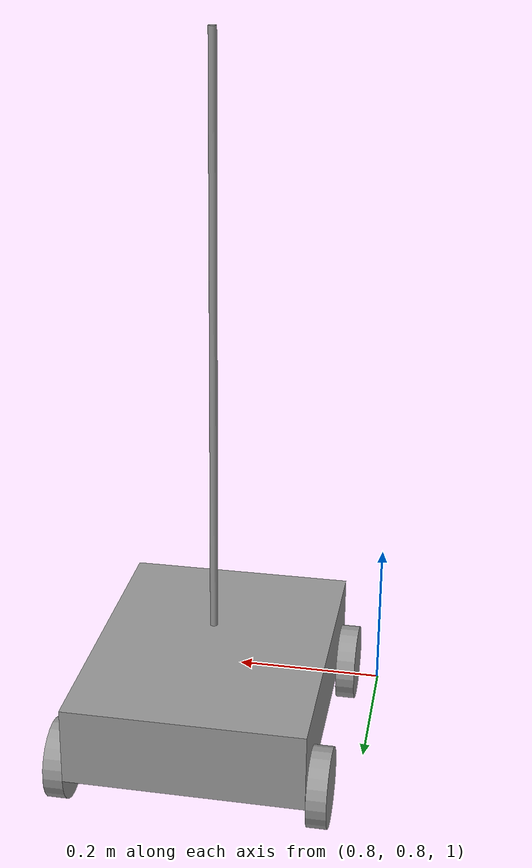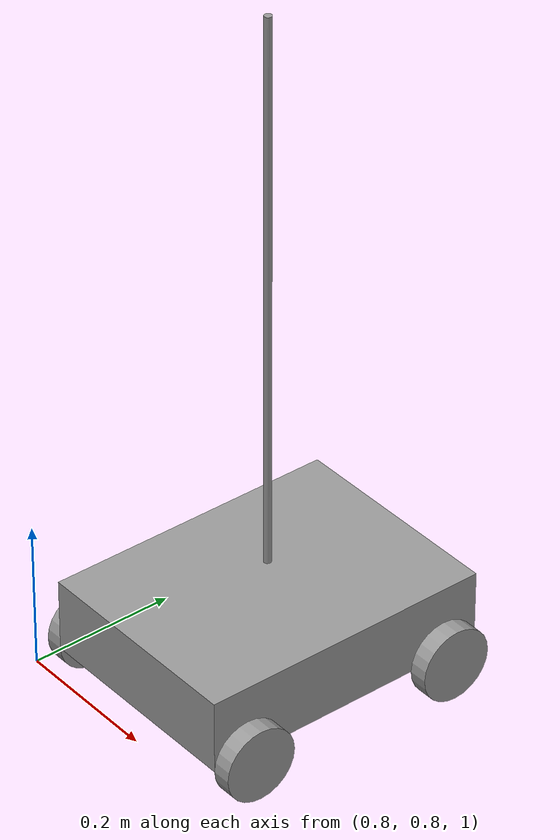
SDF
<sdf version="1.6">
 <world name="crazyflie_pendulum_world">
  <physics name="1ms" type="ignored">
   <max_step_size>0.001</max_step_size>
   <real_time_factor>1.0</real_time_factor>
  </physics>
  <plugin filename="gz-sim-physics-system" name="gz::sim::systems::Physics"/>
  <plugin filename="gz-sim-user-commands-system" name="gz::sim::systems::UserCommands"/>
  <plugin filename="gz-sim-scene-broadcaster-system" name="gz::sim::systems::SceneBroadcaster"/>
  <plugin filename="gz-sim-sensors-system" name="gz::sim::systems::Sensors">
   <render_engine>ogre2</render_engine>
  </plugin>
  <light type="directional" name="sun">
   <pose>0 0 10 0 0 0</pose>
   <diffuse>0.8 0.8 0.8 1</diffuse>
   <specular>0.2 0.2 0.2 1</specular>
   <attenuation>
    <range>1000</range>
    <constant>0.9</constant>
    <linear>0.01</linear>
    <quadratic>0.001</quadratic>
   </attenuation>
   <direction>-0.5 0.1 -0.9</direction>
  </light>
  <model name="ground_plane">
   <static>true</static>
   <link name="link">
    <collision name="collision">
     <geometry><plane><normal>0 0 1</normal><size>100 100</size></plane></geometry>
    </collision>
    <visual name="visual">
     <geometry><plane><normal>0 0 1</normal><size>100 100</size></plane></geometry>
     <material>
      <ambient>0.8 0.8 0.8 1</ambient>
      <diffuse>0.8 0.8 0.8 1</diffuse>
      <specular>0.8 0.8 0.8 1</specular>
     </material>
    </visual>
   </link>
  </model>
  <include><uri>model://inverted_pendulum</uri><name>pendulum_cart</name><pose>1 1 1 0 0 0</pose></include>
 </world>
</sdf>

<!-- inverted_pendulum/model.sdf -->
<sdf version='1.6'>
  <model name='pendulum_cart'>
    <link name='link_0'>
      <pose frame=''>-0 -0 0.1 0 -0 0</pose>
      <inertial>
        <mass>1</mass>
        <inertia>
          <ixx>0.01417</ixx>
          <ixy>0</ixy>
          <ixz>0</ixz>
          <iyy>0.00833333</iyy>
          <iyz>0</iyz>
          <izz>0.0208333</izz>
        </inertia>
        <pose frame=''>0 0 0 0 -0 0</pose>
      </inertial>
      <self_collide>0</self_collide>
      <kinematic>0</kinematic>
      <visual name='visual'>
        <pose frame=''>0 0 0 0 -0 0</pose>
        <geometry>
          <box>
            <size>0.3 0.4 0.1</size>
          </box>
        </geometry>
        <material>
          <lighting>1</lighting>
          <script>
            <uri>file://media/materials/scripts/gazebo.material</uri>
            <name>Gazebo/Grey</name>
          </script>
          <ambient>0.3 0.3 0.3 1</ambient>
          <diffuse>0.7 0.7 0.7 1</diffuse>
          <specular>0.01 0.01 0.01 1</specular>
          <emissive>0 0 0 1</emissive>
          <shader type='vertex'>
            <normal_map>__default__</normal_map>
          </shader>
        </material>
        <cast_shadows>1</cast_shadows>
        <transparency>0</transparency>
      </visual>
      <collision name='collision'>
        <laser_retro>0</laser_retro>
        <max_contacts>10</max_contacts>
        <pose frame=''>0 0 0 0 -0 0</pose>
        <geometry>
          <box>
            <size>0.3 0.4 0.1</size>
          </box>
        </geometry>
        <surface>
          <friction>
            <ode>
              <mu>1</mu>
              <mu2>1</mu2>
              <fdir1>0 0 0</fdir1>
              <slip1>0</slip1>
              <slip2>0</slip2>
            </ode>
            <torsional>
              <coefficient>1</coefficient>
              <patch_radius>0</patch_radius>
              <surface_radius>0</surface_radius>
              <use_patch_radius>1</use_patch_radius>
              <ode>
                <slip>0</slip>
              </ode>
            </torsional>
          </friction>
          <bounce>
            <restitution_coefficient>0</restitution_coefficient>
            <threshold>1e+06</threshold>
          </bounce>
          <contact>
            <collide_without_contact>0</collide_without_contact>
            <collide_without_contact_bitmask>1</collide_without_contact_bitmask>
            <collide_bitmask>1</collide_bitmask>
            <ode>
              <soft_cfm>0</soft_cfm>
              <soft_erp>0.2</soft_erp>
              <kp>1e+13</kp>
              <kd>1</kd>
              <max_vel>0.01</max_vel>
              <min_depth>0</min_depth>
            </ode>
            <bullet>
              <split_impulse>1</split_impulse>
              <split_impulse_penetration_threshold>-0.01</split_impulse_penetration_threshold>
              <soft_cfm>0</soft_cfm>
              <soft_erp>0.2</soft_erp>
              <kp>1e+13</kp>
              <kd>1</kd>
            </bullet>
          </contact>
        </surface>
      </collision>
    </link>
    <link name='link_0_0'>
      <pose frame=''>0 0 0.55 0 -0 0</pose>
      <inertial>
        <mass>0.1</mass>
        <inertia>
          <ixx>0.004688</ixx>
          <ixy>0</ixy>
          <ixz>0</ixz>
          <iyy>0.004688</iyy>
          <iyz>0</iyz>
          <izz>1.25e-06</izz>
        </inertia>
        <pose frame=''>0 0 0 0 -0 0</pose>
      </inertial>
      <gravity>1</gravity>
      <self_collide>0</self_collide>
      <kinematic>0</kinematic>
      <visual name='visual'>
        <pose frame=''>0 0 0 0 -0 0</pose>
        <geometry>
          <cylinder>
            <radius>0.005</radius>
            <length>0.75</length>
          </cylinder>
        </geometry>
        <material>
          <lighting>1</lighting>
          <script>
            <uri>file://media/materials/scripts/gazebo.material</uri>
            <name>Gazebo/Grey</name>
          </script>
          <ambient>0.3 0.3 0.3 1</ambient>
          <diffuse>0.7 0.7 0.7 1</diffuse>
          <specular>0.01 0.01 0.01 1</specular>
          <emissive>0 0 0 1</emissive>
          <shader type='vertex'>
            <normal_map>__default__</normal_map>
          </shader>
        </material>
        <cast_shadows>1</cast_shadows>
        <transparency>0</transparency>
      </visual>
      <collision name='collision'>
        <laser_retro>0</laser_retro>
        <max_contacts>10</max_contacts>
        <pose frame=''>0 0 0 0 -0 0</pose>
        <geometry>
          <cylinder>
            <radius>0.005</radius>
            <length>0.75</length>
          </cylinder>
        </geometry>
        <surface>
          <friction>
            <ode>
              <mu>1</mu>
              <mu2>1</mu2>
              <fdir1>0 0 0</fdir1>
              <slip1>0</slip1>
              <slip2>0</slip2>
            </ode>
            <torsional>
              <coefficient>1</coefficient>
              <patch_radius>0</patch_radius>
              <surface_radius>0</surface_radius>
              <use_patch_radius>1</use_patch_radius>
              <ode>
                <slip>0</slip>
              </ode>
            </torsional>
          </friction>
          <bounce>
            <restitution_coefficient>0</restitution_coefficient>
            <threshold>1e+06</threshold>
          </bounce>
          <contact>
            <collide_without_contact>0</collide_without_contact>
            <collide_without_contact_bitmask>1</collide_without_contact_bitmask>
            <collide_bitmask>1</collide_bitmask>
            <ode>
              <soft_cfm>0</soft_cfm>
              <soft_erp>0.2</soft_erp>
              <kp>1e+13</kp>
              <kd>1</kd>
              <max_vel>0.01</max_vel>
              <min_depth>0</min_depth>
            </ode>
            <bullet>
              <split_impulse>1</split_impulse>
              <split_impulse_penetration_threshold>-0.01</split_impulse_penetration_threshold>
              <soft_cfm>0</soft_cfm>
              <soft_erp>0.2</soft_erp>
              <kp>1e+13</kp>
              <kd>1</kd>
            </bullet>
          </contact>
        </surface>
      </collision>
    </link>
    <link name='link_1'>
      <pose frame=''>0.1625 -0.15 0.05 -3.14159 1.57079 -3.14159</pose>
      <inertial>
        <mass>0.25</mass>
        <inertia>
          <ixx>0.0001693</ixx>
          <ixy>0</ixy>
          <ixz>0</ixz>
          <iyy>0.0001693</iyy>
          <iyz>0</iyz>
          <izz>0.0003125</izz>
        </inertia>
        <pose frame=''>0 0 0 0 -0 0</pose>
      </inertial>
      <self_collide>0</self_collide>
      <kinematic>0</kinematic>
      <visual name='visual'>
        <pose frame=''>0 0 0 0 -0 0</pose>
        <geometry>
          <cylinder>
            <radius>0.05</radius>
            <length>0.025</length>
          </cylinder>
        </geometry>
        <material>
          <lighting>1</lighting>
          <script>
            <uri>file://media/materials/scripts/gazebo.material</uri>
            <name>Gazebo/Grey</name>
          </script>
          <ambient>0.3 0.3 0.3 1</ambient>
          <diffuse>0.7 0.7 0.7 1</diffuse>
          <specular>0.01 0.01 0.01 1</specular>
          <emissive>0 0 0 1</emissive>
          <shader type='vertex'>
            <normal_map>__default__</normal_map>
          </shader>
        </material>
        <cast_shadows>1</cast_shadows>
        <transparency>0</transparency>
      </visual>
      <collision name='collision'>
        <laser_retro>0</laser_retro>
        <max_contacts>10</max_contacts>
        <pose frame=''>0 0 0 0 -0 0</pose>
        <geometry>
          <cylinder>
            <radius>0.05</radius>
            <length>0.025</length>
          </cylinder>
        </geometry>
        <surface>
          <friction>
            <ode>
              <mu>1</mu>
              <mu2>1</mu2>
              <fdir1>0 0 0</fdir1>
              <slip1>0</slip1>
              <slip2>0</slip2>
            </ode>
            <torsional>
              <coefficient>1</coefficient>
              <patch_radius>0</patch_radius>
              <surface_radius>0</surface_radius>
              <use_patch_radius>1</use_patch_radius>
              <ode>
                <slip>0</slip>
              </ode>
            </torsional>
          </friction>
          <bounce>
            <restitution_coefficient>0</restitution_coefficient>
            <threshold>1e+06</threshold>
          </bounce>
          <contact>
            <collide_without_contact>0</collide_without_contact>
            <collide_without_contact_bitmask>1</collide_without_contact_bitmask>
            <collide_bitmask>1</collide_bitmask>
            <ode>
              <soft_cfm>0</soft_cfm>
              <soft_erp>0.2</soft_erp>
              <kp>1e+13</kp>
              <kd>1</kd>
              <max_vel>0.01</max_vel>
              <min_depth>0</min_depth>
            </ode>
            <bullet>
              <split_impulse>1</split_impulse>
              <split_impulse_penetration_threshold>-0.01</split_impulse_penetration_threshold>
              <soft_cfm>0</soft_cfm>
              <soft_erp>0.2</soft_erp>
              <kp>1e+13</kp>
              <kd>1</kd>
            </bullet>
          </contact>
        </surface>
      </collision>
    </link>
    <link name='link_1_clone'>
      <pose frame=''>0.1625 0.15 0.05 -3.14159 1.57079 -3.14159</pose>
      <inertial>
        <mass>0.25</mass>
        <inertia>
          <ixx>0.0001693</ixx>
          <ixy>0</ixy>
          <ixz>0</ixz>
          <iyy>0.0001693</iyy>
          <iyz>0</iyz>
          <izz>0.0003125</izz>
        </inertia>
        <pose frame=''>0 0 0 0 -0 0</pose>
      </inertial>
      <self_collide>0</self_collide>
      <kinematic>0</kinematic>
      <visual name='visual'>
        <pose frame=''>0 0 0 0 -0 0</pose>
        <geometry>
          <cylinder>
            <radius>0.05</radius>
            <length>0.025</length>
          </cylinder>
        </geometry>
        <material>
          <lighting>1</lighting>
          <script>
            <uri>file://media/materials/scripts/gazebo.material</uri>
            <name>Gazebo/Grey</name>
          </script>
          <ambient>0.3 0.3 0.3 1</ambient>
          <diffuse>0.7 0.7 0.7 1</diffuse>
          <specular>0.01 0.01 0.01 1</specular>
          <emissive>0 0 0 1</emissive>
          <shader type='vertex'>
            <normal_map>__default__</normal_map>
          </shader>
        </material>
        <cast_shadows>1</cast_shadows>
        <transparency>0</transparency>
      </visual>
      <collision name='collision'>
        <laser_retro>0</laser_retro>
        <max_contacts>10</max_contacts>
        <pose frame=''>0 0 0 0 -0 0</pose>
        <geometry>
          <cylinder>
            <radius>0.05</radius>
            <length>0.025</length>
          </cylinder>
        </geometry>
        <surface>
          <friction>
            <ode>
              <mu>1</mu>
              <mu2>1</mu2>
              <fdir1>0 0 0</fdir1>
              <slip1>0</slip1>
              <slip2>0</slip2>
            </ode>
            <torsional>
              <coefficient>1</coefficient>
              <patch_radius>0</patch_radius>
              <surface_radius>0</surface_radius>
              <use_patch_radius>1</use_patch_radius>
              <ode>
                <slip>0</slip>
              </ode>
            </torsional>
          </friction>
          <bounce>
            <restitution_coefficient>0</restitution_coefficient>
            <threshold>1e+06</threshold>
          </bounce>
          <contact>
            <collide_without_contact>0</collide_without_contact>
            <collide_without_contact_bitmask>1</collide_without_contact_bitmask>
            <collide_bitmask>1</collide_bitmask>
            <ode>
              <soft_cfm>0</soft_cfm>
              <soft_erp>0.2</soft_erp>
              <kp>1e+13</kp>
              <kd>1</kd>
              <max_vel>0.01</max_vel>
              <min_depth>0</min_depth>
            </ode>
            <bullet>
              <split_impulse>1</split_impulse>
              <split_impulse_penetration_threshold>-0.01</split_impulse_penetration_threshold>
              <soft_cfm>0</soft_cfm>
              <soft_erp>0.2</soft_erp>
              <kp>1e+13</kp>
              <kd>1</kd>
            </bullet>
          </contact>
        </surface>
      </collision>
    </link>
    <link name='link_1_clone_0'>
      <pose frame=''>-0.1625 0.15 0.05 -3.14159 1.57079 -3.14159</pose>
      <inertial>
        <mass>0.25</mass>
        <inertia>
          <ixx>0.0001693</ixx>
          <ixy>0</ixy>
          <ixz>0</ixz>
          <iyy>0.0001693</iyy>
          <iyz>0</iyz>
          <izz>0.0003125</izz>
        </inertia>
        <pose frame=''>0 0 0 0 -0 0</pose>
      </inertial>
      <self_collide>0</self_collide>
      <kinematic>0</kinematic>
      <visual name='visual'>
        <pose frame=''>0 0 0 0 -0 0</pose>
        <geometry>
          <cylinder>
            <radius>0.05</radius>
            <length>0.025</length>
          </cylinder>
        </geometry>
        <material>
          <lighting>1</lighting>
          <script>
            <uri>file://media/materials/scripts/gazebo.material</uri>
            <name>Gazebo/Grey</name>
          </script>
          <ambient>0.3 0.3 0.3 1</ambient>
          <diffuse>0.7 0.7 0.7 1</diffuse>
          <specular>0.01 0.01 0.01 1</specular>
          <emissive>0 0 0 1</emissive>
          <shader type='vertex'>
            <normal_map>__default__</normal_map>
          </shader>
        </material>
        <cast_shadows>1</cast_shadows>
        <transparency>0</transparency>
      </visual>
      <collision name='collision'>
        <laser_retro>0</laser_retro>
        <max_contacts>10</max_contacts>
        <pose frame=''>0 0 0 0 -0 0</pose>
        <geometry>
          <cylinder>
            <radius>0.05</radius>
            <length>0.025</length>
          </cylinder>
        </geometry>
        <surface>
          <friction>
            <ode>
              <mu>1</mu>
              <mu2>1</mu2>
              <fdir1>0 0 0</fdir1>
              <slip1>0</slip1>
              <slip2>0</slip2>
            </ode>
            <torsional>
              <coefficient>1</coefficient>
              <patch_radius>0</patch_radius>
              <surface_radius>0</surface_radius>
              <use_patch_radius>1</use_patch_radius>
              <ode>
                <slip>0</slip>
              </ode>
            </torsional>
          </friction>
          <bounce>
            <restitution_coefficient>0</restitution_coefficient>
            <threshold>1e+06</threshold>
          </bounce>
          <contact>
            <collide_without_contact>0</collide_without_contact>
            <collide_without_contact_bitmask>1</collide_without_contact_bitmask>
            <collide_bitmask>1</collide_bitmask>
            <ode>
              <soft_cfm>0</soft_cfm>
              <soft_erp>0.2</soft_erp>
              <kp>1e+13</kp>
              <kd>1</kd>
              <max_vel>0.01</max_vel>
              <min_depth>0</min_depth>
            </ode>
            <bullet>
              <split_impulse>1</split_impulse>
              <split_impulse_penetration_threshold>-0.01</split_impulse_penetration_threshold>
              <soft_cfm>0</soft_cfm>
              <soft_erp>0.2</soft_erp>
              <kp>1e+13</kp>
              <kd>1</kd>
            </bullet>
          </contact>
        </surface>
      </collision>
    </link>
    <link name='link_1_clone_1'>
      <pose frame=''>-0.1625 -0.15 0.05 -3.14159 1.57079 -3.14159</pose>
      <inertial>
        <mass>0.25</mass>
        <inertia>
          <ixx>0.0001693</ixx>
          <ixy>0</ixy>
          <ixz>0</ixz>
          <iyy>0.0001693</iyy>
          <iyz>0</iyz>
          <izz>0.0003125</izz>
        </inertia>
        <pose frame=''>0 0 0 0 -0 0</pose>
      </inertial>
      <self_collide>0</self_collide>
      <kinematic>0</kinematic>
      <visual name='visual'>
        <pose frame=''>0 0 0 0 -0 0</pose>
        <geometry>
          <cylinder>
            <radius>0.05</radius>
            <length>0.025</length>
          </cylinder>
        </geometry>
        <material>
          <lighting>1</lighting>
          <script>
            <uri>file://media/materials/scripts/gazebo.material</uri>
            <name>Gazebo/Grey</name>
          </script>
          <ambient>0.3 0.3 0.3 1</ambient>
          <diffuse>0.7 0.7 0.7 1</diffuse>
          <specular>0.01 0.01 0.01 1</specular>
          <emissive>0 0 0 1</emissive>
          <shader type='vertex'>
            <normal_map>__default__</normal_map>
          </shader>
        </material>
        <cast_shadows>1</cast_shadows>
        <transparency>0</transparency>
      </visual>
      <collision name='collision'>
        <laser_retro>0</laser_retro>
        <max_contacts>10</max_contacts>
        <pose frame=''>0 0 0 0 -0 0</pose>
        <geometry>
          <cylinder>
            <radius>0.05</radius>
            <length>0.025</length>
          </cylinder>
        </geometry>
        <surface>
          <friction>
            <ode>
              <mu>1</mu>
              <mu2>1</mu2>
              <fdir1>0 0 0</fdir1>
              <slip1>0</slip1>
              <slip2>0</slip2>
            </ode>
            <torsional>
              <coefficient>1</coefficient>
              <patch_radius>0</patch_radius>
              <surface_radius>0</surface_radius>
              <use_patch_radius>1</use_patch_radius>
              <ode>
                <slip>0</slip>
              </ode>
            </torsional>
          </friction>
          <bounce>
            <restitution_coefficient>0</restitution_coefficient>
            <threshold>1e+06</threshold>
          </bounce>
          <contact>
            <collide_without_contact>0</collide_without_contact>
            <collide_without_contact_bitmask>1</collide_without_contact_bitmask>
            <collide_bitmask>1</collide_bitmask>
            <ode>
              <soft_cfm>0</soft_cfm>
              <soft_erp>0.2</soft_erp>
              <kp>1e+13</kp>
              <kd>1</kd>
              <max_vel>0.01</max_vel>
              <min_depth>0</min_depth>
            </ode>
            <bullet>
              <split_impulse>1</split_impulse>
              <split_impulse_penetration_threshold>-0.01</split_impulse_penetration_threshold>
              <soft_cfm>0</soft_cfm>
              <soft_erp>0.2</soft_erp>
              <kp>1e+13</kp>
              <kd>1</kd>
            </bullet>
          </contact>
        </surface>
      </collision>
    </link>
    <joint name='pendulum_pivot' type='revolute'>
      <parent>link_0</parent>
      <child>link_0_0</child>
      <pose frame=''>0 0 -0.375 0 -0 0</pose>
      <axis>
        <xyz>1 0 0</xyz>
        <use_parent_model_frame>0</use_parent_model_frame>
        <limit>
          <lower>-1.79769e+308</lower>
          <upper>1.79769e+308</upper>
          <effort>-1</effort>
          <velocity>-1</velocity>
        </limit>
        <dynamics>
          <spring_reference>0</spring_reference>
          <spring_stiffness>0</spring_stiffness>
          <damping>0</damping>
          <friction>0</friction>
        </dynamics>
      </axis>
      <physics>
        <ode>
          <limit>
            <cfm>0</cfm>
            <erp>0.2</erp>
          </limit>
          <suspension>
            <cfm>0</cfm>
            <erp>0.2</erp>
          </suspension>
        </ode>
      </physics>
    </joint>
    <joint name='br_wheel' type='revolute'>
      <parent>link_0</parent>
      <child>link_1</child>
      <pose frame=''>0 0 0 0 -0 0</pose>
      <axis>
        <xyz>0 0 1</xyz>
        <use_parent_model_frame>0</use_parent_model_frame>
        <limit>
          <lower>-1.79769e+308</lower>
          <upper>1.79769e+308</upper>
          <effort>-1</effort>
          <velocity>-1</velocity>
        </limit>
        <dynamics>
          <spring_reference>0</spring_reference>
          <spring_stiffness>0</spring_stiffness>
          <damping>0</damping>
          <friction>0</friction>
        </dynamics>
      </axis>
      <physics>
        <ode>
          <limit>
            <cfm>0</cfm>
            <erp>0.2</erp>
          </limit>
          <suspension>
            <cfm>0</cfm>
            <erp>0.2</erp>
          </suspension>
        </ode>
      </physics>
    </joint>
    <joint name='fr_wheel' type='revolute'>
      <parent>link_0</parent>
      <child>link_1_clone</child>
      <pose frame=''>0 0 0 0 -0 0</pose>
      <axis>
        <xyz>0 0 1</xyz>
        <use_parent_model_frame>0</use_parent_model_frame>
        <limit>
          <lower>-1.79769e+308</lower>
          <upper>1.79769e+308</upper>
          <effort>-1</effort>
          <velocity>-1</velocity>
        </limit>
        <dynamics>
          <spring_reference>0</spring_reference>
          <spring_stiffness>0</spring_stiffness>
          <damping>0</damping>
          <friction>0</friction>
        </dynamics>
      </axis>
      <physics>
        <ode>
          <limit>
            <cfm>0</cfm>
            <erp>0.2</erp>
          </limit>
          <suspension>
            <cfm>0</cfm>
            <erp>0.2</erp>
          </suspension>
        </ode>
      </physics>
    </joint>
    <joint name='bl_wheel' type='revolute'>
      <parent>link_0</parent>
      <child>link_1_clone_1</child>
      <pose frame=''>0 0 0 0 -0 0</pose>
      <axis>
        <xyz>0 0 1</xyz>
        <use_parent_model_frame>0</use_parent_model_frame>
        <limit>
          <lower>-1.79769e+308</lower>
          <upper>1.79769e+308</upper>
          <effort>-1</effort>
          <velocity>-1</velocity>
        </limit>
        <dynamics>
          <spring_reference>0</spring_reference>
          <spring_stiffness>0</spring_stiffness>
          <damping>0</damping>
          <friction>0</friction>
        </dynamics>
      </axis>
      <physics>
        <ode>
          <limit>
            <cfm>0</cfm>
            <erp>0.2</erp>
          </limit>
          <suspension>
            <cfm>0</cfm>
            <erp>0.2</erp>
          </suspension>
        </ode>
      </physics>
    </joint>
    <joint name='fl_wheel' type='revolute'>
      <parent>link_0</parent>
      <child>link_1_clone_0</child>
      <pose frame=''>0 0 0 0 -0 0</pose>
      <axis>
        <xyz>0 0 1</xyz>
        <use_parent_model_frame>0</use_parent_model_frame>
        <limit>
          <lower>-1.79769e+308</lower>
          <upper>1.79769e+308</upper>
          <effort>-1</effort>
          <velocity>-1</velocity>
        </limit>
        <dynamics>
          <spring_reference>0</spring_reference>
          <spring_stiffness>0</spring_stiffness>
          <damping>0</damping>
          <friction>0</friction>
        </dynamics>
      </axis>
      <physics>
        <ode>
          <limit>
            <cfm>0</cfm>
            <erp>0.2</erp>
          </limit>
          <suspension>
            <cfm>0</cfm>
            <erp>0.2</erp>
          </suspension>
        </ode>
      </physics>
    </joint>
    <static>0</static>
    <allow_auto_disable>1</allow_auto_disable>
    <joint name = "cart_slider" type = "prismatic">
      <parent>world</parent>
      <child>link_0</child>
      <pose>0 0 0 0 0 0</pose>
      <axis>
        <xyz>0 1 0</xyz>
        <limit>
          <lower>-5</lower>
          <upper>5</upper>
          <effort>1000</effort>
          <velocity>5</velocity>
        </limit>
        <dynamics>
          <damping>0</damping>
        </dynamics>
      </axis>
    </joint>
    <plugin
      filename="gz-sim-odometry-publisher-system"
      name="gz::sim::systems::OdometryPublisher">
      <dimensions>3</dimensions>
    </plugin>
    <plugin name="gz::sim::systems::VelocityControl"
        filename="gz-sim-velocity-control-system">
        <topic>/model/pendulum_cart/cmd_vel</topic>
    </plugin>
    <plugin name="gz::sim::systems::JointController"
        filename="gz-sim-joint-controller-system">
        <joint_name>cart_slider</joint_name>
        <initial_velocity>0.0</initial_velocity>
    </plugin>
  </model>
</sdf>
